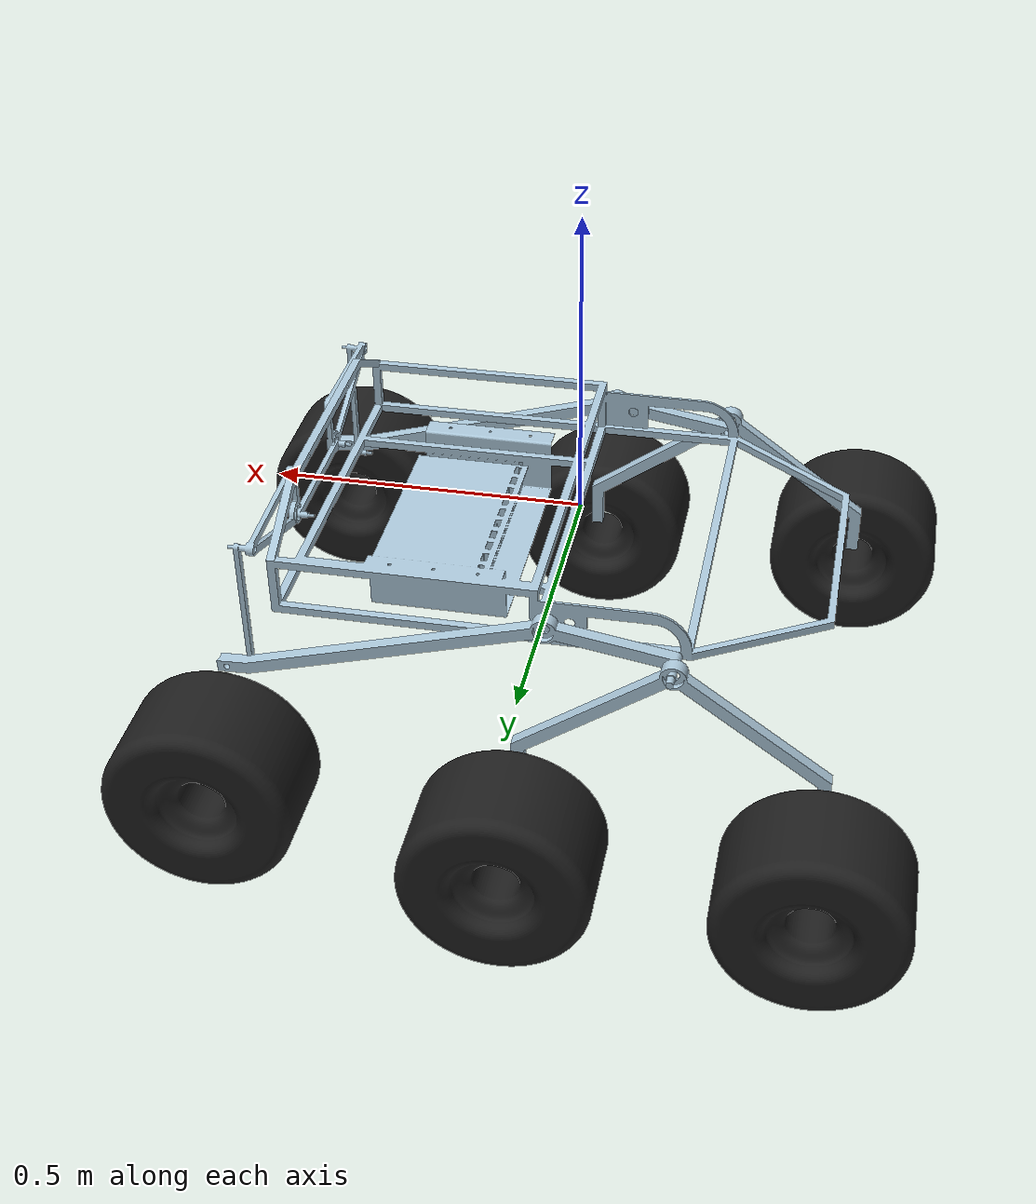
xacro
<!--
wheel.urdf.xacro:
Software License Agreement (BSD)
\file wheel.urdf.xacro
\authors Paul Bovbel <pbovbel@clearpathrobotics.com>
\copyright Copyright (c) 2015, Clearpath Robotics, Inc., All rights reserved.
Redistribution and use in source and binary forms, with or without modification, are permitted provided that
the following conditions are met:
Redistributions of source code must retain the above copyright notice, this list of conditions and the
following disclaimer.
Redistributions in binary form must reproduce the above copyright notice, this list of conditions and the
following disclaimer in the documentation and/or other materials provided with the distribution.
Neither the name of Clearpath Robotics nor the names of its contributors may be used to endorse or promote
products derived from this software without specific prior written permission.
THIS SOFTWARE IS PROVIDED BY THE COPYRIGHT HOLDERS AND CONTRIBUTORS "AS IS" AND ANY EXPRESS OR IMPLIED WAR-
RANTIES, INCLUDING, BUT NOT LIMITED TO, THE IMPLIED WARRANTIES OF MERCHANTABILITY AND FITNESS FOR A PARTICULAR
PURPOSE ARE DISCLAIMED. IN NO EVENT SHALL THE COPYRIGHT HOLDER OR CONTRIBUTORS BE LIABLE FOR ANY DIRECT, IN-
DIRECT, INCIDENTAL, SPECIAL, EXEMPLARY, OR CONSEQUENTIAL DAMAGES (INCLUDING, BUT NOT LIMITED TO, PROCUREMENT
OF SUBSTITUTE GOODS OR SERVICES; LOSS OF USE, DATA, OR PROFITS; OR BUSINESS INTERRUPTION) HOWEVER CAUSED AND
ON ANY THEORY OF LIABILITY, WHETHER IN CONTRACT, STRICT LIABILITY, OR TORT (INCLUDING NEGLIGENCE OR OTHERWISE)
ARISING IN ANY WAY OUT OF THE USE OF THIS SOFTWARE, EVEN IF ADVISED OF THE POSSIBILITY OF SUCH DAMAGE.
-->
<?xml version="1.0"?>
<robot name="mars_rover_iitb" xmlns:xacro="http://ros.org/wiki/xacro">
  <gazebo>
    <plugin name="drive_controller" filename="librover_gazebo.so">
      <topicName>"cmd_vel"</topicName>
    </plugin>

  </gazebo>
  <!-- Included URDF/XACRO Files -->
  <xacro:include filename="$(find msi_2k16_17_urdf)/urdf/wheel.urdf.xacro" />

  <material name="chassis">
    <color rgba="0.67 0.78 0.85 1" />
  </material>

  <property name="M_PI" value="3.14159"/>

  <!-- Base Size -->
  <property name="base_x_size" value="1.1" />
  <property name="base_y_size" value="0.59" />
  <property name="base_z_size" value="0.35" />

  <property name="rocker_wheel_x" value="0.4947" />
  <property name="rocker_wheel_y" value="0.1083" />
  <property name="rocker_wheel_z" value="-0.2738" />

  <property name="bogie_wheel_x" value="0.2348" />
  <property name="bogie_wheel_y" value="0.1146" />
  <property name="bogie_wheel_z" value="-0.1932" />

  <!-- Wheel Properties -->

  <property name="wheel_L" value="0.18" />
  <property name="wheel_R" value="0.17" />
  <property name="wheel_length" value="0.18" />
  <property name="wheel_radius" value="0.17" />

  <!-- Wheel Mounting Positions -->
  <xacro:property name="wheelbase" value="1.08" />
  <xacro:property name="track" value="1.0" />
  <xacro:property name="wheel_vertical_offset" value="${-base_z_size/2}" />

    <!-- Base link is the center of the robot's bottom plate -->
  <link name="base_link">
    <visual>
      <geometry>
         <mesh filename="package://msi_2k16_17_urdf/meshes/chassis.stl" scale="0.01 0.01 0.01"/>
      </geometry>
      <origin xyz="0 0 0" rpy="0 0 ${-M_PI/2}"/>
      <material name="chassis"/>
    </visual>
  </link>

  <gazebo reference="base_link">
    <material> Gazebo/Grey</material>
  </gazebo>

  <link name="rocker_R">
     <visual>
      <geometry>
         <mesh filename="package://msi_2k16_17_urdf/meshes/rocker_MIR.stl" scale="0.01 0.01 0.01"/>
      </geometry>
      <origin xyz="0 0 0" rpy="0 0 0"/>
      <material name="chassis"/>
    </visual>
    <inertial>
      <origin xyz="0 0 1" rpy="0 0 0"/>
      <mass value="1"/>
      <inertia
        ixx="1.0" ixy="0.0" ixz="0.0"
        iyy="1.0" iyz="0.0"
        izz="1.0"/>
    </inertial>
  </link>

  <joint name="rocker_R_to_chassis" type="revolute">
      <origin xyz=" 0 ${base_y_size/2 + 0.04} 0" rpy="0 0 0"/>
      <parent link="base_link"/>
      <child link="rocker_R"/>

<limit effort="20" lower="-0.17" upper="0.17" velocity="1"/>
      <axis xyz="0 1 0" rpy="0 0 0" />
  </joint>

  <link name="rocker_L">
     <visual>
      <geometry>
         <mesh filename="package://msi_2k16_17_urdf/meshes/rocker.stl" scale="0.01 0.01 0.01"/>
      </geometry>
      <origin xyz="0 0 0" rpy="0 0 0"/>
      <material name="chassis"/>
    </visual>
    <inertial>
      <origin xyz="0 0 1" rpy="0 0 0"/>
      <mass value="1"/>
      <inertia
        ixx="1.0" ixy="0.0" ixz="0.0"
        iyy="1.0" iyz="0.0"
        izz="1.0"/>
    </inertial>
  </link>

  <joint name="rocker_L_to_chassis" type="revolute">
      <origin xyz=" 0 ${-base_y_size/2 - 0.02} 0" rpy="0 0 0"/>
      <parent link="base_link"/>
      <child link="rocker_L"/>

<limit effort="20" lower="-0.17" upper="0.17" velocity="1"/>
      <axis xyz="0 1 0" rpy="0 0 0" />
  </joint>

  <link name="bogie_R">
    <visual>
     <geometry>
       <mesh filename="package://msi_2k16_17_urdf/meshes/bogie.stl" scale="0.01 0.01 0.01"/>
     </geometry>
      <origin xyz="0 0 0" rpy="0 0 0"/>
      <material name="chassis"/>
    </visual>
    <inertial>
      <origin xyz="0 0 1" rpy="0 0 0"/>
      <mass value="1"/>
      <inertia
        ixx="1.0" ixy="0.0" ixz="0.0"
        iyy="1.0" iyz="0.0"
        izz="1.0"/>
    </inertial>
  </link>

  <joint name="bogie_R_to_rocker" type="revolute">
      <origin xyz="-0.202 0.0200 -0.1434" rpy="0 0 0"/>
      <parent link="rocker_R"/>
      <child link="bogie_R"/>

<limit effort="20" lower="-0.17" upper="0.17" velocity="1"/>
      <axis xyz="0 1 0" rpy="0 0 0" />
  </joint>

  <link name="bogie_L">
    <visual>
     <geometry>
       <mesh filename="package://msi_2k16_17_urdf/meshes/bogie.stl" scale="0.01 0.01 0.01"/>
     </geometry>
      <origin xyz="0 0 0" rpy="0 0 0"/>
      <material name="chassis"/>
    </visual>
    <inertial>
      <origin xyz="0 0 1" rpy="0 0 0"/>
      <mass value="1"/>
      <inertia
        ixx="1.0" ixy="0.0" ixz="0.0"
        iyy="1.0" iyz="0.0"
        izz="1.0"/>
    </inertial>
  </link>

  <joint name="bogie_L_to_rocker" type="revolute">
      <origin xyz="-0.202 -0.044 -0.1434 " rpy="0 0 0"/>
      <parent link="rocker_L"/>
      <child link="bogie_L"/>

<limit effort="20" lower="-0.17" upper="0.17" velocity="1"/>
      <axis xyz="0 1 0" rpy="0 0 0" />
  </joint>

    <!-- Base footprint is on the ground under the robot -->
    <link name="base_footprint"/>

    <joint name="base_footprint_joint" type="fixed">
      <origin xyz="0 0 ${wheel_vertical_offset - wheel_R}" rpy="0 0 0" />
      <parent link="base_link" />
      <child link="base_footprint" />
    </joint>

    <!-- Interial link stores the robot's inertial information -->
    <link name="inertial_link">
      <inertial>
        <mass value="33.455" />
        <origin xyz="-0.08748 -0.00085 0.09947" />
        <inertia ixx="0.6022" ixy="-0.02364" ixz="-0.1197" iyy="1.7386" iyz="-0.001544" izz="2.0296" />
      </inertial>
    </link>

    <joint name="inertial_joint" type="fixed">
      <origin xyz="0 0 0" rpy="0 0 0" />
      <parent link="base_link" />
      <child link="inertial_link" />
    </joint>

    <!-- IMU Link is the standard mounting position for the UM6 IMU.-->
    <!-- Can be modified with environment variables in /etc/ros/setup.bash -->
    <link name="imu_link"/>
    <joint name="imu_joint" type="fixed">
      <origin xyz="0.19 0 0.149" rpy="0 -1.5708 3.1416" />
      <parent link="base_link" />
      <child link="imu_link" />
    </joint>
    <gazebo reference="imu_link">
    </gazebo>

    <!-- wheel macros -->

    <xacro:husky_wheel wheel_prefix="front_L" parent="bogie_L">
  <origin xyz="${-bogie_wheel_x} ${-bogie_wheel_y} ${bogie_wheel_z}" rpy="0 0 0" />
    </xacro:husky_wheel>

    <xacro:husky_wheel wheel_prefix="front_R" parent="bogie_R">
  <origin xyz="${-bogie_wheel_x} ${bogie_wheel_y} ${bogie_wheel_z}" rpy="0 0 0" />
    </xacro:husky_wheel>

    <xacro:husky_wheel wheel_prefix="rear_L" parent="rocker_L">
  <origin xyz="${rocker_wheel_x} ${-rocker_wheel_y} ${rocker_wheel_z}" rpy="0 0 0" />
    </xacro:husky_wheel>

    <xacro:husky_wheel wheel_prefix="rear_R" parent="rocker_R">
  <origin xyz="${rocker_wheel_x} ${rocker_wheel_y} ${rocker_wheel_z}" rpy="0 0 0" />
    </xacro:husky_wheel>

    <xacro:husky_wheel wheel_prefix="center_L" parent="bogie_L">
  <origin xyz="${bogie_wheel_x} ${-bogie_wheel_y} ${bogie_wheel_z}" rpy="0 0 0" />
    </xacro:husky_wheel>

    <xacro:husky_wheel wheel_prefix="center_R" parent="bogie_R">
  <origin xyz="${bogie_wheel_x} ${bogie_wheel_y} ${bogie_wheel_z}" rpy="0 0 0" />
    </xacro:husky_wheel>

    <!-- Decorations MAcro -->

      <xacro:property name="reflect" value="-1" />

      <!-- Differential Suspension -->
      <link name="differential" >
         <visual>
          <geometry>
             <mesh filename="package://msi_2k16_17_urdf/meshes/differential.stl" scale="0.01 0.01 0.01"/>
          </geometry>
          <origin xyz="0 0 0" rpy="0 0 0"/>
          <material name="chassis"/>
        </visual>
        <inertial>
          <origin xyz="0 0 0" rpy="0 0 0"/>
          <mass value="1"/>
          <inertia
            ixx="1.0" ixy="0.0" ixz="0.0"
            iyy="1.0" iyz="0.0"
            izz="1.0"/>
        </inertial>
      </link>

      <!-- STATIC joints for differential -->
      <joint name="diff_to_chassis" type="fixed">
                  <origin xyz="${base_x_size/2-0.12} 0 0" rpy="0 0 0"/>
                  <parent link="base_link"/>
                    <child link="differential"/>
                  </joint>

      <!-- Join arm -->

</robot>

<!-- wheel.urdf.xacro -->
<robot xmlns:xacro="http://ros.org/wiki/xacro" name="husky_wheel">

	<xacro:macro name="husky_wheel" params="wheel_prefix *joint_pose parent">
		<link name="${wheel_prefix}_wheel_link">
			<inertial>
				<mass value="5" />
				<origin xyz="0 0 0" />
				<inertia  ixx="0.02467" ixy="0" ixz="0" iyy="0.02467" iyz="0" izz="0.04411" />
			</inertial>
			<visual>
				<origin xyz="0 ${-wheel_L/2} 0" rpy="0 0 ${M_PI/2}" />
				<geometry>
					<mesh filename="package://msi_2k16_17_urdf/meshes/tyre.stl" scale="0.01 0.01 0.01" />
				</geometry>
			</visual>
			<collision>
				<origin xyz="0 0 0" rpy="${M_PI/2} 0 0" />
				<geometry>
					<cylinder length="${wheel_length}" radius="${wheel_radius}" />
				</geometry>
			</collision>
		</link>

		<gazebo reference="${wheel_prefix}_wheel_link">
			<mu1 value="1.0"/>
			<mu2 value="1.0"/>
			<kp value="10000000.0" />
			<kd value="1.0" />
			<fdir1 value="1 0 0"/>
    		<material> Gazebo/FlatBlack</material>
		</gazebo>

		<joint name="${wheel_prefix}_wheel" type="continuous">
			<parent link="${parent}"/>
			<child link="${wheel_prefix}_wheel_link"/>
			<xacro:insert_block name="joint_pose"/>
			<axis xyz="0 1 0" rpy="0 0 0" />
		</joint>

		<transmission name="${wheel_prefix}_wheel_trans" type="SimpleTransmission">
			<type>transmission_interface/SimpleTransmission</type>
			<actuator name="${wheel_prefix}_wheel_motor">
				<mechanicalReduction>1</mechanicalReduction>
			</actuator>
			<joint name="${wheel_prefix}_wheel">
				<hardwareInterface>VelocityJointInterface</hardwareInterface>
			</joint>
		</transmission>

	</xacro:macro>
</robot>
